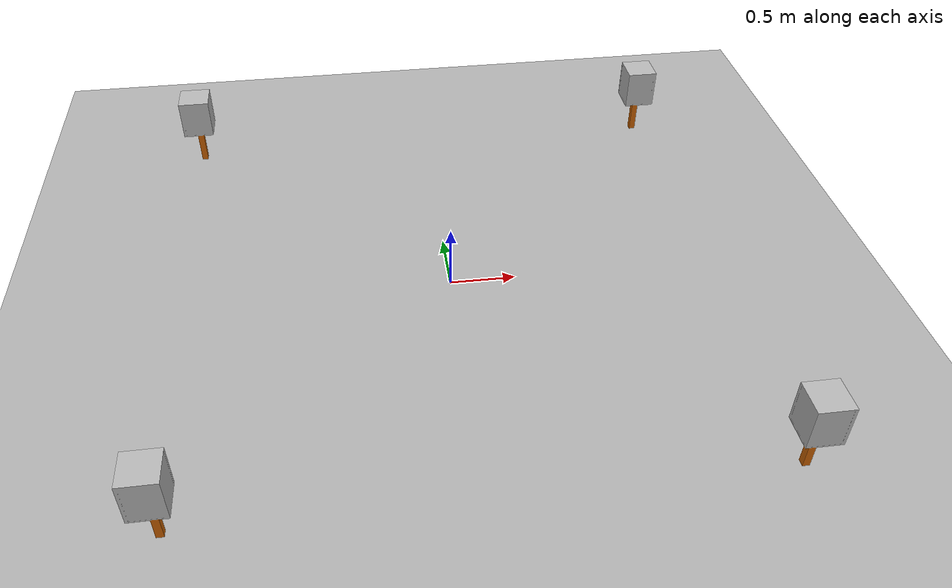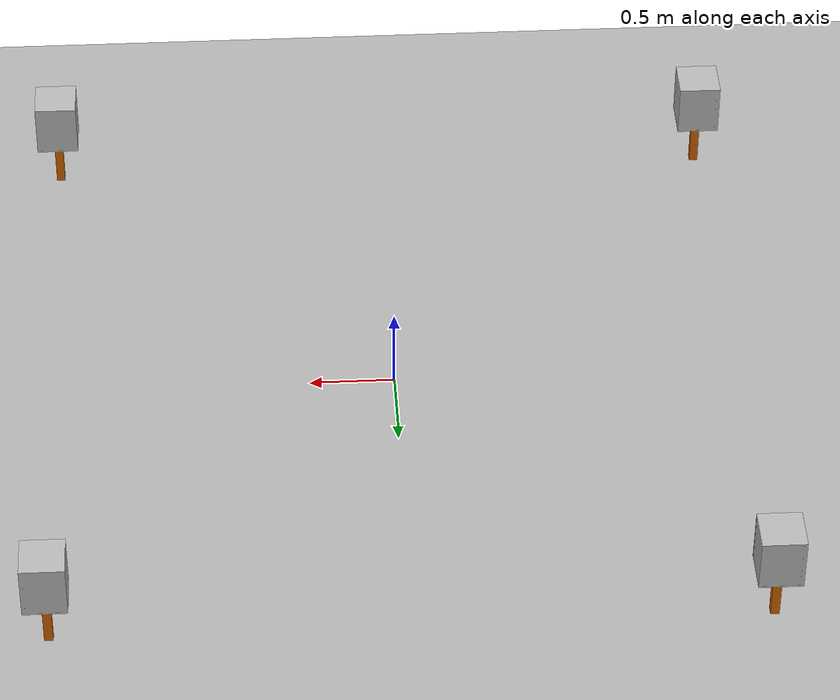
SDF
<?xml version="1.0" ?>
<sdf version="1.8">
  <world name="poles_world">

    <plugin
      filename="ignition-gazebo-physics-system"
      name="ignition::gazebo::systems::Physics"/>

    <plugin
      filename="ignition-gazebo-user-commands-system"
      name="ignition::gazebo::systems::UserCommands"/>

    <plugin
      filename="ignition-gazebo-scene-broadcaster-system"
      name="ignition::gazebo::systems::SceneBroadcaster"/>

    <plugin
      filename="ignition-gazebo-sensors-system"
      name="ignition::gazebo::systems::Sensors"/>

    <plugin
      filename="ignition-gazebo-imu-system"
      name="ignition::gazebo::systems::Imu"/>

    <light type="directional" name="sun">
      <pose>0 0 10 0 0 0</pose>
      <diffuse>0.8 0.8 0.8 1</diffuse>
      <specular>0.2 0.2 0.2 1</specular>
      <direction>-0.5 0.1 -0.9</direction>
    </light>

    <model name="ground_plane">
      <static>true</static>
      <link name="link">
        <collision name="collision">
          <geometry>
            <plane>
              <normal>0 0 1</normal>
              <size>20 20</size>
            </plane>
          </geometry>
        </collision>

        <visual name="visual">
          <geometry>
            <plane>
              <normal>0 0 1</normal>
              <size>20 20</size>
            </plane>
          </geometry>
          <material>
            <ambient>0.7 0.7 0.7 1</ambient>
            <diffuse>0.7 0.7 0.7 1</diffuse>
          </material>
        </visual>
      </link>
    </model>

    <!-- Square vertex 1: front-right -->
    <include>
      <uri>model://pole51</uri>
      <name>pole51</name>
      <pose>2.0 2.0 0 0 0 0</pose>
    </include>

    <!-- Square vertex 2: front-left -->
    <include>
      <uri>model://pole52</uri>
      <name>pole52</name>
      <pose>-2.0 2.0 0 0 0 0</pose>
    </include>

    <!-- Square vertex 3: rear-left -->
    <include>
      <uri>model://pole53</uri>
      <name>pole53</name>
      <pose>-2.0 -2.0 0 0 0 0</pose>
    </include>

    <!-- Square vertex 4: rear-right -->
    <include>
      <uri>model://pole54</uri>
      <name>pole54</name>
      <pose>2.0 -2.0 0 0 0 0</pose>
    </include>

  </world>
</sdf>

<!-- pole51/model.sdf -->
<sdf version="1.6">
    <model name="pole51">
        <static>true</static>
        <pose>0 0 0 0 0 0</pose>
        <link name="link">
            <collision name="collision">
                <geometry>
                    <mesh>
                        <scale>1 1 1</scale>
                        <uri>model://pole51/meshes/pole51.stl</uri>
                    </mesh>
                </geometry>
                <surface>
                    <friction>
                        <ode>
                            <mu>1.2</mu>
                            <mu2>1.2</mu2>
                        </ode>
                    </friction>
                </surface>
            </collision>
            <visual name="visual">
                <geometry>
                    <mesh>
                        <scale>1 1 1</scale>
                        <uri>model://pole51/meshes/pole51.dae</uri>
                    </mesh>
                </geometry>
            </visual>
        </link>
    </model>
</sdf>

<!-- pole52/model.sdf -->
<sdf version="1.6">
    <model name="pole52">
        <static>true</static>
        <link name="link">
            <collision name="collision">
                <geometry>
                    <mesh>
                        <scale>1 1 1</scale>
                        <uri>model://pole52/meshes/pole52.stl</uri>
                    </mesh>
                    <surface>
                        <friction>
                            <ode>
                                <mu>1.2</mu>
                                <mu2>1.2</mu2>
                            </ode>
                        </friction>
                    </surface>
                </geometry>
            </collision>
            <visual name="visual">
                <geometry>
                    <mesh>
                        <scale>1 1 1</scale>
                        <uri>model://pole52/meshes/pole52.dae</uri>
                    </mesh>
                </geometry>
            </visual>
        </link>
    </model>
</sdf>

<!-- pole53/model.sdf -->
<sdf version="1.6">
    <model name="pole53">
        <static>true</static>
        <link name="link">
            <collision name="collision">
                <geometry>
                    <mesh>
                        <scale>1 1 1</scale>
                        <uri>model://pole53/meshes/pole53.stl</uri>
                    </mesh>
                    <surface>
                        <friction>
                            <ode>
                                <mu>1.2</mu>
                                <mu2>1.2</mu2>
                            </ode>
                        </friction>
                    </surface>
                </geometry>
            </collision>
            <visual name="visual">
                <geometry>
                    <mesh>
                        <scale>1 1 1</scale>
                        <uri>model://pole53/meshes/pole53.dae</uri>
                    </mesh>
                </geometry>
            </visual>
        </link>
    </model>
</sdf>

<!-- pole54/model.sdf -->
<sdf version="1.6">
    <model name="pole54">
        <static>true</static>
        <link name="link">
            <collision name="collision">
                <geometry>
                    <mesh>
                        <scale>1 1 1</scale>
                        <uri>model://pole54/meshes/pole54.stl</uri>
                    </mesh>
                    <surface>
                        <friction>
                            <ode>
                                <mu>1.2</mu>
                                <mu2>1.2</mu2>
                            </ode>
                        </friction>
                    </surface>
                </geometry>
            </collision>
            <visual name="visual">
                <geometry>
                    <mesh>
                        <scale>1 1 1</scale>
                        <uri>model://pole54/meshes/pole54.dae</uri>
                    </mesh>
                </geometry>
            </visual>
        </link>
    </model>
</sdf>
